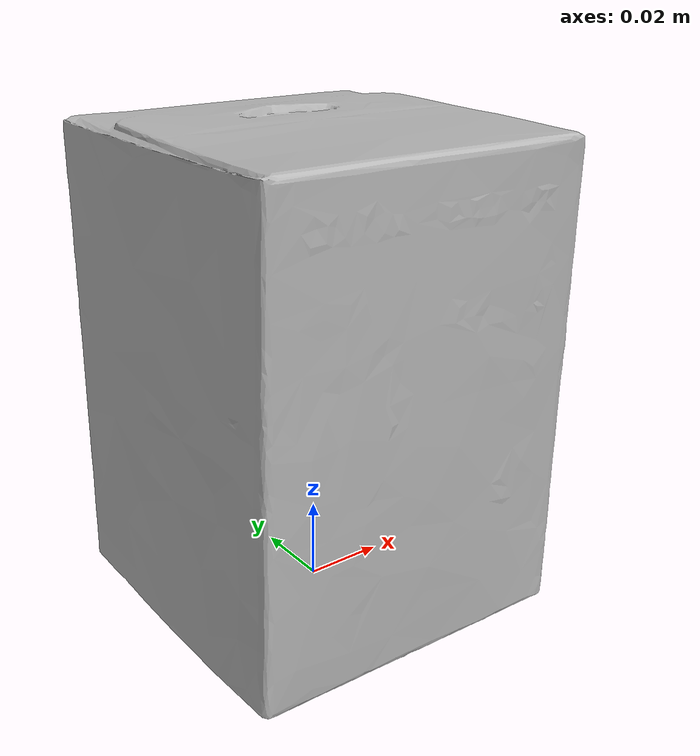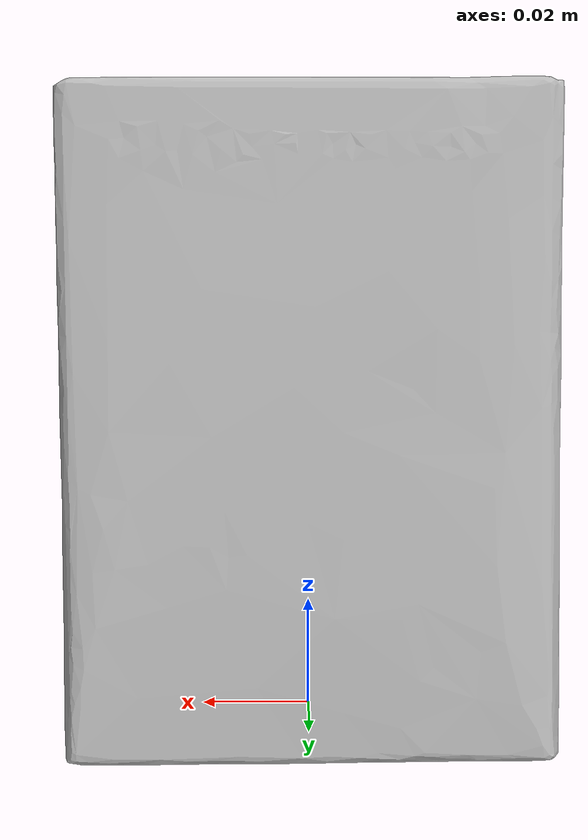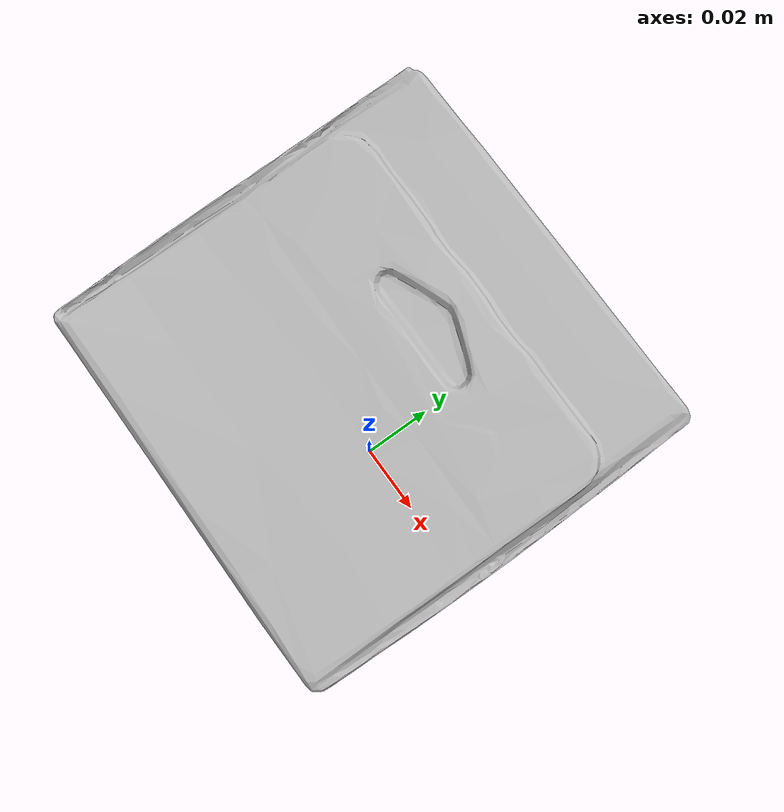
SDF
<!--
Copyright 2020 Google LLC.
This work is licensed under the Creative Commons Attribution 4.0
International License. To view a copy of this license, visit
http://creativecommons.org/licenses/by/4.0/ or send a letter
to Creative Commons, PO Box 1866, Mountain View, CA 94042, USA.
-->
<?xml version="1.0" ?>
<sdf version="1.6">
  <model name="Office_Depot_HP_74XL75_Remanufactured_Ink_Cartridges_BlackTriColor_2_count">
    <link name="link_0">
      <visual name="visual">
        <geometry>
          <mesh>
            <uri>meshes/model.obj</uri>
          </mesh>
        </geometry>
      </visual>
      <collision name="collision_0">
        <geometry>
          <mesh>
            <uri>meshes/model.obj</uri>
          </mesh>
        </geometry>
      </collision>
    </link>
  </model>
</sdf>
